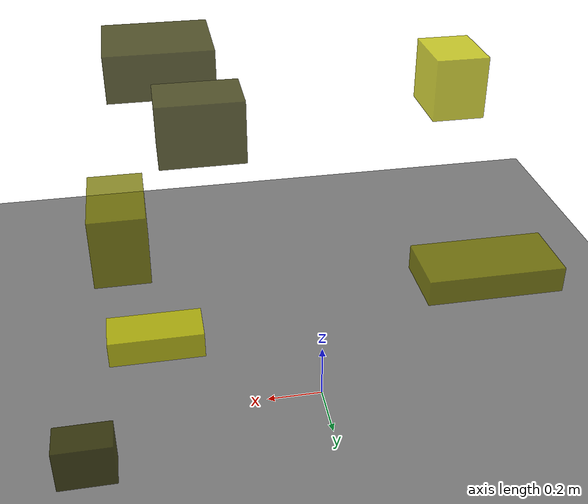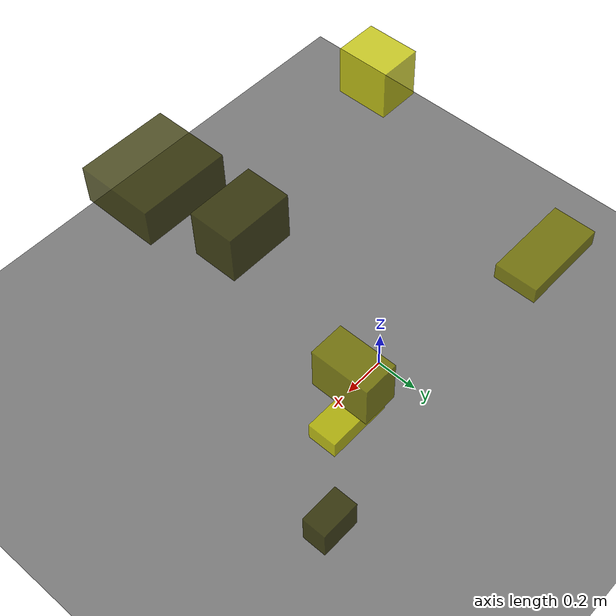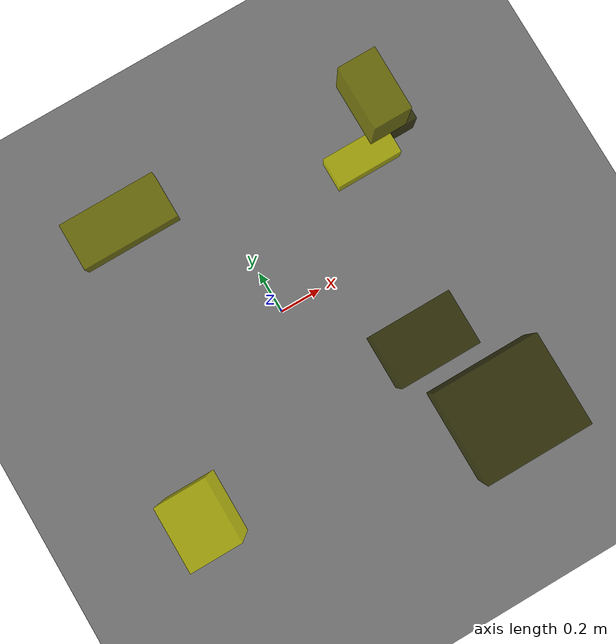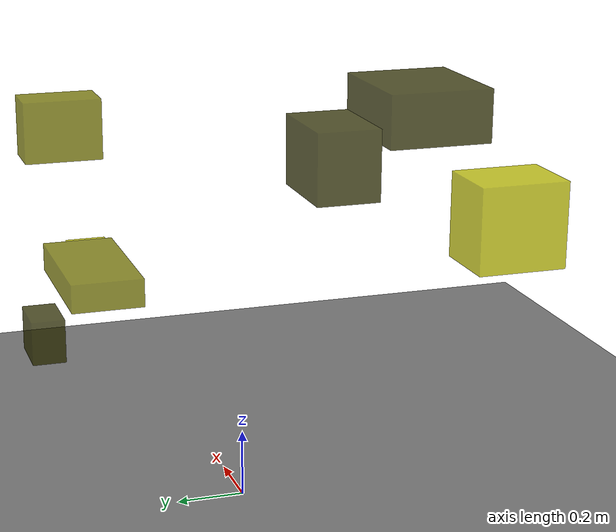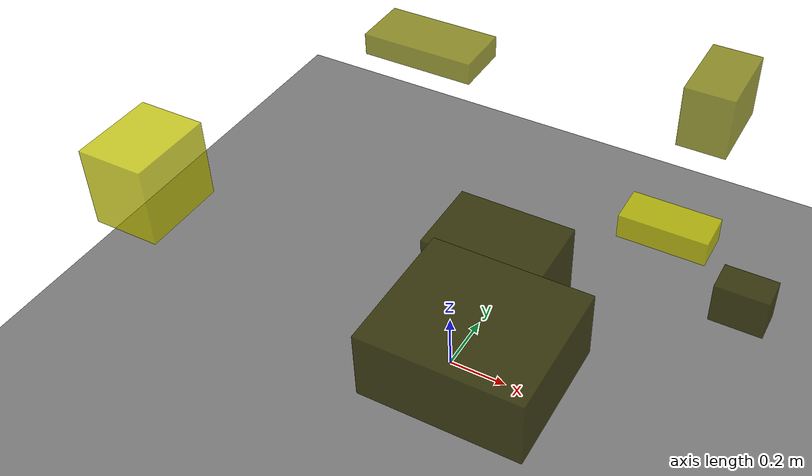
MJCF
<?xml version="1.0"?>
<mujoco model="obstacle_scene">
  <compiler angle="radian" coordinate="local"/>
  <option timestep="0.001" gravity="0 0 -9.81"/>

  <asset>
    <material name="obstacle_mat" rgba="0.8 0.8 0.0 0.8"/>
    <material name="ground_mat" rgba="0.5 0.5 0.5 1"/>
  </asset>

  <worldbody>
    <!-- Ground plane -->
    <geom name="ground" type="plane" size="3 3 0.1" material="ground_mat"/>

    <!-- Obstacles -->
    <body name="obstacle_0" pos="0.809135 0.442895 0.277007">
      <geom name="obs_0" type="box" size="0.089440 0.055099 0.073614" rgba="0.2 0.2 0.0 0.8"/>
    </body>
    <body name="obstacle_1" pos="0.635398 0.398479 1.012838">
      <geom name="obs_1" type="box" size="0.071692 0.120541 0.094783" rgba="0.5 0.5 0.0 0.8"/>
    </body>
    <body name="obstacle_2" pos="-0.586795 -0.543621 0.965978">
      <geom name="obs_2" type="box" size="0.096419 0.120135 0.115916" rgba="0.8 0.8 0.0 0.8"/>
    </body>
    <body name="obstacle_3" pos="0.473888 -0.733008 1.036442">
      <geom name="obs_3" type="box" size="0.194871 0.169356 0.086600" rgba="0.2 0.2 0.0 0.8"/>
    </body>
    <body name="obstacle_4" pos="-0.341256 0.503230 0.842222">
      <geom name="obs_4" type="box" size="0.188862 0.092142 0.036679" rgba="0.5 0.5 0.0 0.8"/>
    </body>
    <body name="obstacle_5" pos="0.570428 0.315265 0.584963">
      <geom name="obs_5" type="box" size="0.138255 0.063206 0.040289" rgba="0.8 0.8 0.0 0.8"/>
    </body>
    <body name="obstacle_6" pos="0.360117 -0.403244 0.922380">
      <geom name="obs_6" type="box" size="0.151306 0.102244 0.114243" rgba="0.2 0.2 0.0 0.8"/>
    </body>
  </worldbody>
</mujoco>
